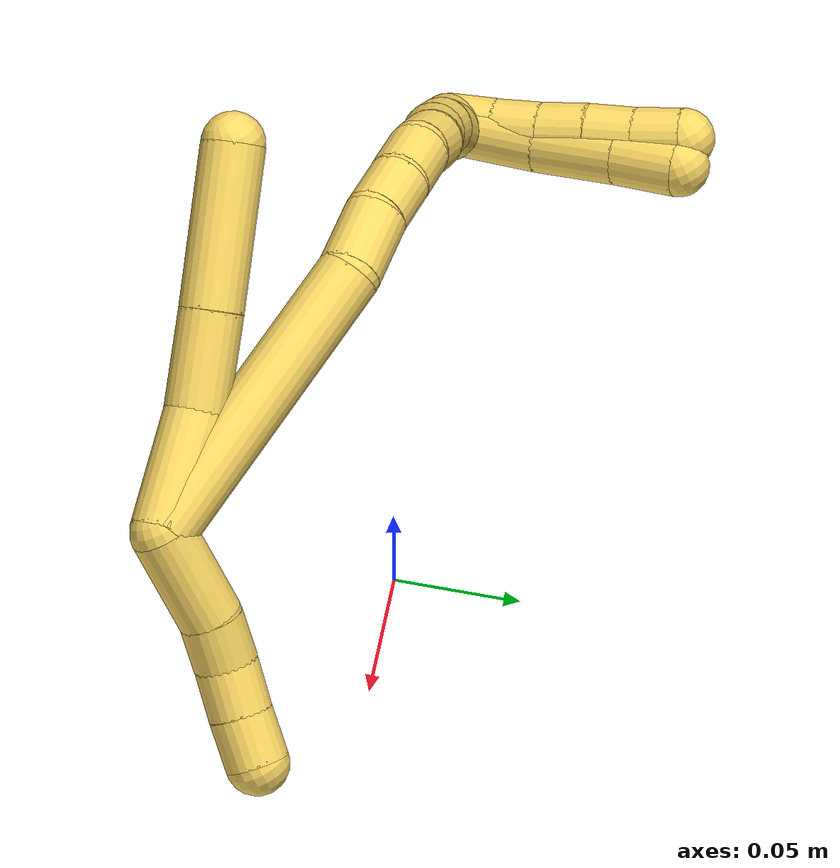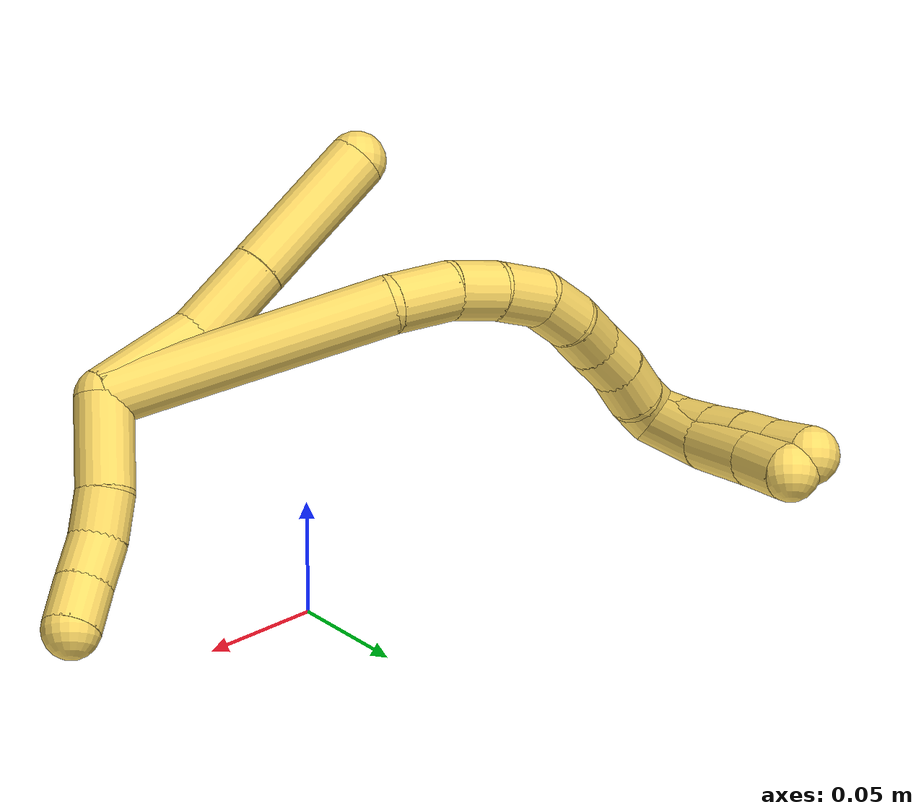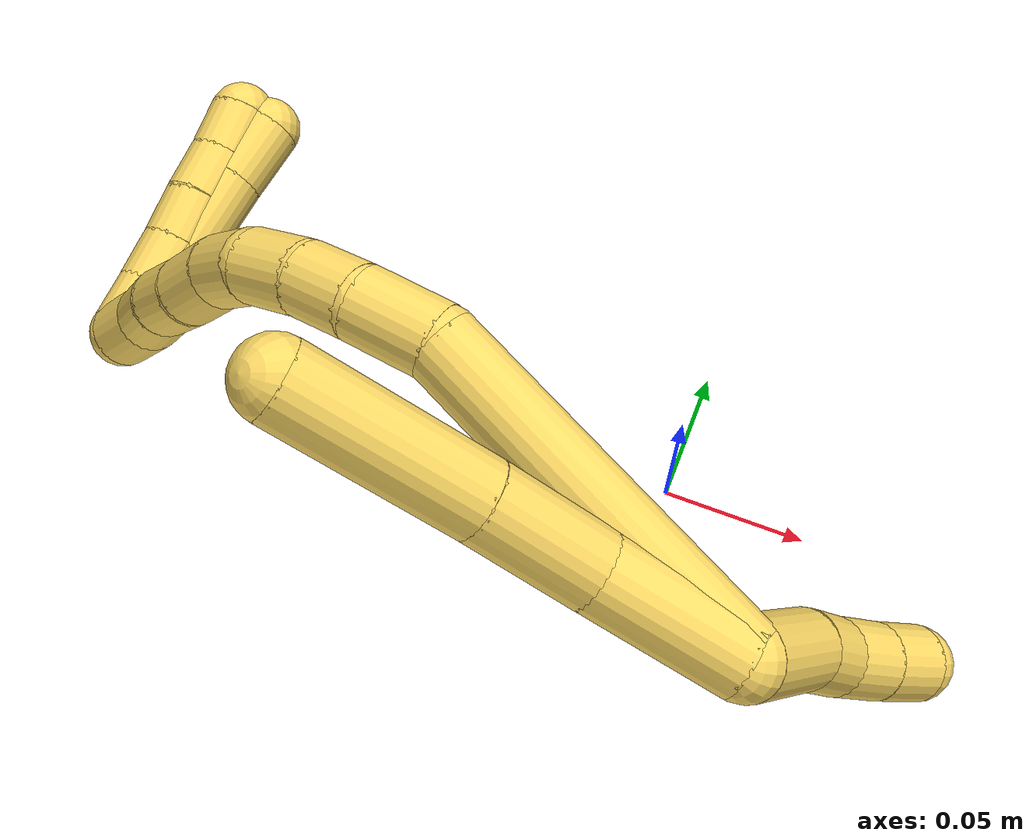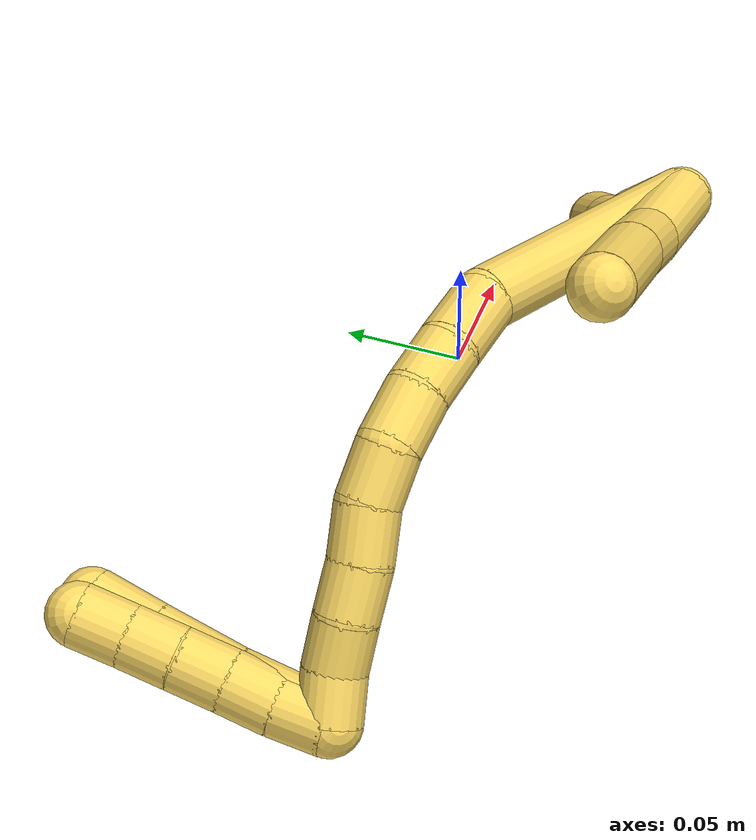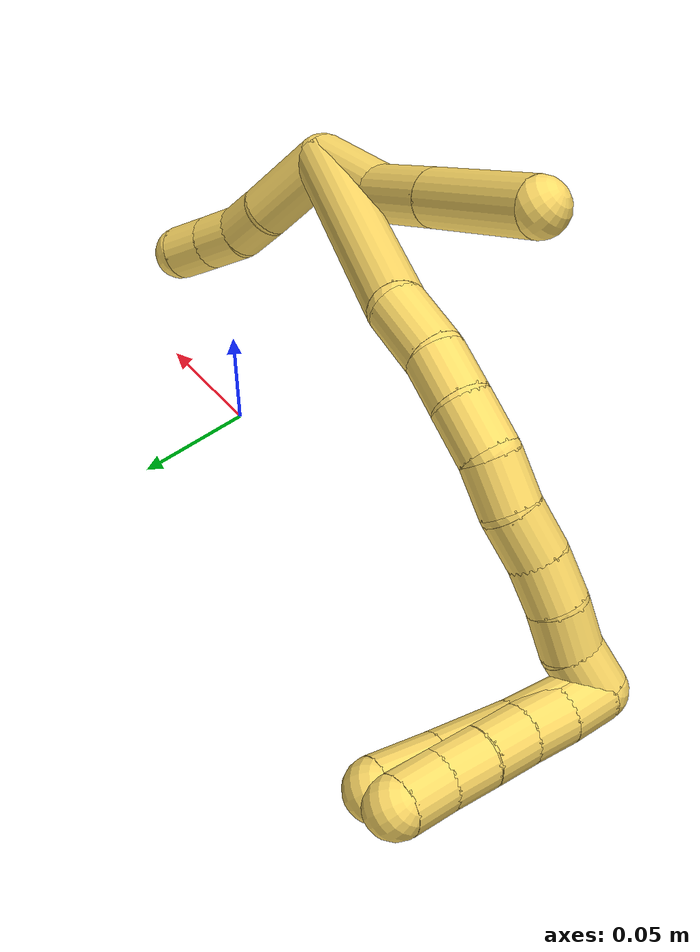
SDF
<sdf version="1.7">
 <world name="default">
  <model name="5">
   <static>0</static>
   <link name="5">
    <collision name="collision-cylinder-e_1_2_8">
     <pose>-0.019123 0.000857 0.014063 -0.060892 -0.935826 0.030778</pose>
     <geometry><cylinder><radius>0.0125</radius><length>0.047505</length></cylinder></geometry>
     <surface>
      <friction><ode><mu>1.16</mu><mu2>1.16</mu2><slip1>0</slip1><slip2>0</slip2></ode></friction>
      <contact><ode><kp>1e+06</kp><kd>1</kd><max_vel>0</max_vel><min_depth>0.001</min_depth></ode></contact>
     </surface>
    </collision>
    <visual name="visual-cylinder-e_1_2_8">
     <pose>-0.019123 0.000857 0.014063 -0.060892 -0.935826 0.030778</pose>
     <geometry><cylinder><radius>0.0125</radius><length>0.047505</length></cylinder></geometry>
     <material><ambient>1 0.858824 0.4 1</ambient></material>
    </visual>
    <collision name="collision-cylinder-e_2_8_9">
     <pose>-0.050573 0.004284 0.042958 -0.17149 -0.686198 0.061392</pose>
     <geometry><cylinder><radius>0.0125</radius><length>0.038914</length></cylinder></geometry>
     <surface>
      <friction><ode><mu>1.16</mu><mu2>1.16</mu2><slip1>0</slip1><slip2>0</slip2></ode></friction>
      <contact><ode><kp>1e+06</kp><kd>1</kd><max_vel>0</max_vel><min_depth>0.001</min_depth></ode></contact>
     </surface>
    </collision>
    <visual name="visual-cylinder-e_2_8_9">
     <pose>-0.050573 0.004284 0.042958 -0.17149 -0.686198 0.061392</pose>
     <geometry><cylinder><radius>0.0125</radius><length>0.038914</length></cylinder></geometry>
     <material><ambient>1 0.858824 0.4 1</ambient></material>
    </visual>
    <collision name="collision-cylinder-e_3_9_6">
     <pose>-0.083076 0.010231 0.082125 -0.137973 -0.687502 0.049458</pose>
     <geometry><cylinder><radius>0.0125</radius><length>0.063581</length></cylinder></geometry>
     <surface>
      <friction><ode><mu>1.16</mu><mu2>1.16</mu2><slip1>0</slip1><slip2>0</slip2></ode></friction>
      <contact><ode><kp>1e+06</kp><kd>1</kd><max_vel>0</max_vel><min_depth>0.001</min_depth></ode></contact>
     </surface>
    </collision>
    <visual name="visual-cylinder-e_3_9_6">
     <pose>-0.083076 0.010231 0.082125 -0.137973 -0.687502 0.049458</pose>
     <geometry><cylinder><radius>0.0125</radius><length>0.063581</length></cylinder></geometry>
     <material><ambient>1 0.858824 0.4 1</ambient></material>
    </visual>
    <collision name="collision-cylinder-e_1_2_10">
     <pose>-0.000493 0.000101 -0.019827 -3.13651 -0.024846 2.73824</pose>
     <geometry><cylinder><radius>0.0125</radius><length>0.039668</length></cylinder></geometry>
     <surface>
      <friction><ode><mu>1.16</mu><mu2>1.16</mu2><slip1>0</slip1><slip2>0</slip2></ode></friction>
      <contact><ode><kp>1e+06</kp><kd>1</kd><max_vel>0</max_vel><min_depth>0.001</min_depth></ode></contact>
     </surface>
    </collision>
    <visual name="visual-cylinder-e_1_2_10">
     <pose>-0.000493 0.000101 -0.019827 -3.13651 -0.024846 2.73824</pose>
     <geometry><cylinder><radius>0.0125</radius><length>0.039668</length></cylinder></geometry>
     <material><ambient>1 0.858824 0.4 1</ambient></material>
    </visual>
    <collision name="collision-cylinder-e_2_10_11">
     <pose>0.000184 -0.000851 -0.049633 3.03651 0.116076 1.67034</pose>
     <geometry><cylinder><radius>0.0125</radius><length>0.020204</length></cylinder></geometry>
     <surface>
      <friction><ode><mu>1.16</mu><mu2>1.16</mu2><slip1>0</slip1><slip2>0</slip2></ode></friction>
      <contact><ode><kp>1e+06</kp><kd>1</kd><max_vel>0</max_vel><min_depth>0.001</min_depth></ode></contact>
     </surface>
    </collision>
    <visual name="visual-cylinder-e_2_10_11">
     <pose>0.000184 -0.000851 -0.049633 3.03651 0.116076 1.67034</pose>
     <geometry><cylinder><radius>0.0125</radius><length>0.020204</length></cylinder></geometry>
     <material><ambient>1 0.858824 0.4 1</ambient></material>
    </visual>
    <collision name="collision-cylinder-e_3_11_12">
     <pose>0.004365 -0.00114 -0.069167 -3.06184 0.304291 -2.63247</pose>
     <geometry><cylinder><radius>0.0125</radius><length>0.020094</length></cylinder></geometry>
     <surface>
      <friction><ode><mu>1.16</mu><mu2>1.16</mu2><slip1>0</slip1><slip2>0</slip2></ode></friction>
      <contact><ode><kp>1e+06</kp><kd>1</kd><max_vel>0</max_vel><min_depth>0.001</min_depth></ode></contact>
     </surface>
    </collision>
    <visual name="visual-cylinder-e_3_11_12">
     <pose>0.004365 -0.00114 -0.069167 -3.06184 0.304291 -2.63247</pose>
     <geometry><cylinder><radius>0.0125</radius><length>0.020094</length></cylinder></geometry>
     <material><ambient>1 0.858824 0.4 1</ambient></material>
    </visual>
    <collision name="collision-cylinder-e_4_12_5">
     <pose>0.010174 0.000818 -0.088266 -3.0171 0.283176 -2.31719</pose>
     <geometry><cylinder><radius>0.0125</radius><length>0.020035</length></cylinder></geometry>
     <surface>
      <friction><ode><mu>1.16</mu><mu2>1.16</mu2><slip1>0</slip1><slip2>0</slip2></ode></friction>
      <contact><ode><kp>1e+06</kp><kd>1</kd><max_vel>0</max_vel><min_depth>0.001</min_depth></ode></contact>
     </surface>
    </collision>
    <visual name="visual-cylinder-e_4_12_5">
     <pose>0.010174 0.000818 -0.088266 -3.0171 0.283176 -2.31719</pose>
     <geometry><cylinder><radius>0.0125</radius><length>0.020035</length></cylinder></geometry>
     <material><ambient>1 0.858824 0.4 1</ambient></material>
    </visual>
    <collision name="collision-cylinder-e_1_2_13">
     <pose>-0.056459 0.014271 0.020708 -0.603416 -1.15174 0.398756</pose>
     <geometry><cylinder><radius>0.0125</radius><length>0.123615</length></cylinder></geometry>
     <surface>
      <friction><ode><mu>1.16</mu><mu2>1.16</mu2><slip1>0</slip1><slip2>0</slip2></ode></friction>
      <contact><ode><kp>1e+06</kp><kd>1</kd><max_vel>0</max_vel><min_depth>0.001</min_depth></ode></contact>
     </surface>
    </collision>
    <visual name="visual-cylinder-e_1_2_13">
     <pose>-0.056459 0.014271 0.020708 -0.603416 -1.15174 0.398756</pose>
     <geometry><cylinder><radius>0.0125</radius><length>0.123615</length></cylinder></geometry>
     <material><ambient>1 0.858824 0.4 1</ambient></material>
    </visual>
    <collision name="collision-cylinder-e_2_13_14">
     <pose>-0.126259 0.027021 0.046041 0.317811 -1.2208 -0.223272</pose>
     <geometry><cylinder><radius>0.0125</radius><length>0.028401</length></cylinder></geometry>
     <surface>
      <friction><ode><mu>1.16</mu><mu2>1.16</mu2><slip1>0</slip1><slip2>0</slip2></ode></friction>
      <contact><ode><kp>1e+06</kp><kd>1</kd><max_vel>0</max_vel><min_depth>0.001</min_depth></ode></contact>
     </surface>
    </collision>
    <visual name="visual-cylinder-e_2_13_14">
     <pose>-0.126259 0.027021 0.046041 0.317811 -1.2208 -0.223272</pose>
     <geometry><cylinder><radius>0.0125</radius><length>0.028401</length></cylinder></geometry>
     <material><ambient>1 0.858824 0.4 1</ambient></material>
    </visual>
    <collision name="collision-cylinder-e_3_14_15">
     <pose>-0.150252 0.0235 0.052132 0.938512 -1.34219 -0.765493</pose>
     <geometry><cylinder><radius>0.0125</radius><length>0.021876</length></cylinder></geometry>
     <surface>
      <friction><ode><mu>1.16</mu><mu2>1.16</mu2><slip1>0</slip1><slip2>0</slip2></ode></friction>
      <contact><ode><kp>1e+06</kp><kd>1</kd><max_vel>0</max_vel><min_depth>0.001</min_depth></ode></contact>
     </surface>
    </collision>
    <visual name="visual-cylinder-e_3_14_15">
     <pose>-0.150252 0.0235 0.052132 0.938512 -1.34219 -0.765493</pose>
     <geometry><cylinder><radius>0.0125</radius><length>0.021876</length></cylinder></geometry>
     <material><ambient>1 0.858824 0.4 1</ambient></material>
    </visual>
    <collision name="collision-cylinder-e_4_15_16">
     <pose>-0.171634 0.017822 0.054063 1.4446 -1.23813 -1.12125</pose>
     <geometry><cylinder><radius>0.0125</radius><length>0.022703</length></cylinder></geometry>
     <surface>
      <friction><ode><mu>1.16</mu><mu2>1.16</mu2><slip1>0</slip1><slip2>0</slip2></ode></friction>
      <contact><ode><kp>1e+06</kp><kd>1</kd><max_vel>0</max_vel><min_depth>0.001</min_depth></ode></contact>
     </surface>
    </collision>
    <visual name="visual-cylinder-e_4_15_16">
     <pose>-0.171634 0.017822 0.054063 1.4446 -1.23813 -1.12125</pose>
     <geometry><cylinder><radius>0.0125</radius><length>0.022703</length></cylinder></geometry>
     <material><ambient>1 0.858824 0.4 1</ambient></material>
    </visual>
    <collision name="collision-cylinder-e_5_16_17">
     <pose>-0.191277 0.008772 0.05202 2.00784 -0.98374 -1.39929</pose>
     <geometry><cylinder><radius>0.0125</radius><length>0.021413</length></cylinder></geometry>
     <surface>
      <friction><ode><mu>1.16</mu><mu2>1.16</mu2><slip1>0</slip1><slip2>0</slip2></ode></friction>
      <contact><ode><kp>1e+06</kp><kd>1</kd><max_vel>0</max_vel><min_depth>0.001</min_depth></ode></contact>
     </surface>
    </collision>
    <visual name="visual-cylinder-e_5_16_17">
     <pose>-0.191277 0.008772 0.05202 2.00784 -0.98374 -1.39929</pose>
     <geometry><cylinder><radius>0.0125</radius><length>0.021413</length></cylinder></geometry>
     <material><ambient>1 0.858824 0.4 1</ambient></material>
    </visual>
    <collision name="collision-cylinder-e_6_17_18">
     <pose>-0.207657 -0.00396 0.047217 1.87273 -0.769442 -1.00598</pose>
     <geometry><cylinder><radius>0.0125</radius><length>0.021462</length></cylinder></geometry>
     <surface>
      <friction><ode><mu>1.16</mu><mu2>1.16</mu2><slip1>0</slip1><slip2>0</slip2></ode></friction>
      <contact><ode><kp>1e+06</kp><kd>1</kd><max_vel>0</max_vel><min_depth>0.001</min_depth></ode></contact>
     </surface>
    </collision>
    <visual name="visual-cylinder-e_6_17_18">
     <pose>-0.207657 -0.00396 0.047217 1.87273 -0.769442 -1.00598</pose>
     <geometry><cylinder><radius>0.0125</radius><length>0.021462</length></cylinder></geometry>
     <material><ambient>1 0.858824 0.4 1</ambient></material>
    </visual>
    <collision name="collision-cylinder-e_7_18_19">
     <pose>-0.222779 -0.017408 0.042067 2.00974 -0.849986 -1.23807</pose>
     <geometry><cylinder><radius>0.0125</radius><length>0.02038</length></cylinder></geometry>
     <surface>
      <friction><ode><mu>1.16</mu><mu2>1.16</mu2><slip1>0</slip1><slip2>0</slip2></ode></friction>
      <contact><ode><kp>1e+06</kp><kd>1</kd><max_vel>0</max_vel><min_depth>0.001</min_depth></ode></contact>
     </surface>
    </collision>
    <visual name="visual-cylinder-e_7_18_19">
     <pose>-0.222779 -0.017408 0.042067 2.00974 -0.849986 -1.23807</pose>
     <geometry><cylinder><radius>0.0125</radius><length>0.02038</length></cylinder></geometry>
     <material><ambient>1 0.858824 0.4 1</ambient></material>
    </visual>
    <collision name="collision-cylinder-e_8_19_20">
     <pose>-0.237107 -0.029748 0.035099 2.15219 -0.728275 -1.23019</pose>
     <geometry><cylinder><radius>0.0125</radius><length>0.020051</length></cylinder></geometry>
     <surface>
      <friction><ode><mu>1.16</mu><mu2>1.16</mu2><slip1>0</slip1><slip2>0</slip2></ode></friction>
      <contact><ode><kp>1e+06</kp><kd>1</kd><max_vel>0</max_vel><min_depth>0.001</min_depth></ode></contact>
     </surface>
    </collision>
    <visual name="visual-cylinder-e_8_19_20">
     <pose>-0.237107 -0.029748 0.035099 2.15219 -0.728275 -1.23019</pose>
     <geometry><cylinder><radius>0.0125</radius><length>0.020051</length></cylinder></geometry>
     <material><ambient>1 0.858824 0.4 1</ambient></material>
    </visual>
    <collision name="collision-cylinder-e_9_20_1">
     <pose>-0.250659 -0.04308 0.029104 1.83122 -0.754006 -0.951568</pose>
     <geometry><cylinder><radius>0.0125</radius><length>0.020099</length></cylinder></geometry>
     <surface>
      <friction><ode><mu>1.16</mu><mu2>1.16</mu2><slip1>0</slip1><slip2>0</slip2></ode></friction>
      <contact><ode><kp>1e+06</kp><kd>1</kd><max_vel>0</max_vel><min_depth>0.001</min_depth></ode></contact>
     </surface>
    </collision>
    <visual name="visual-cylinder-e_9_20_1">
     <pose>-0.250659 -0.04308 0.029104 1.83122 -0.754006 -0.951568</pose>
     <geometry><cylinder><radius>0.0125</radius><length>0.020099</length></cylinder></geometry>
     <material><ambient>1 0.858824 0.4 1</ambient></material>
    </visual>
    <collision name="collision-cylinder-e_1_1_21">
     <pose>-0.263505 -0.034134 0.017744 -2.1047 -0.31016 0.534932</pose>
     <geometry><cylinder><radius>0.0125</radius><length>0.039097</length></cylinder></geometry>
     <surface>
      <friction><ode><mu>1.16</mu><mu2>1.16</mu2><slip1>0</slip1><slip2>0</slip2></ode></friction>
      <contact><ode><kp>1e+06</kp><kd>1</kd><max_vel>0</max_vel><min_depth>0.001</min_depth></ode></contact>
     </surface>
    </collision>
    <visual name="visual-cylinder-e_1_1_21">
     <pose>-0.263505 -0.034134 0.017744 -2.1047 -0.31016 0.534932</pose>
     <geometry><cylinder><radius>0.0125</radius><length>0.039097</length></cylinder></geometry>
     <material><ambient>1 0.858824 0.4 1</ambient></material>
    </visual>
    <collision name="collision-cylinder-e_2_21_22">
     <pose>-0.274089 -0.002982 0.001238 -2.00601 -0.270025 0.419655</pose>
     <geometry><cylinder><radius>0.0125</radius><length>0.034618</length></cylinder></geometry>
     <surface>
      <friction><ode><mu>1.16</mu><mu2>1.16</mu2><slip1>0</slip1><slip2>0</slip2></ode></friction>
      <contact><ode><kp>1e+06</kp><kd>1</kd><max_vel>0</max_vel><min_depth>0.001</min_depth></ode></contact>
     </surface>
    </collision>
    <visual name="visual-cylinder-e_2_21_22">
     <pose>-0.274089 -0.002982 0.001238 -2.00601 -0.270025 0.419655</pose>
     <geometry><cylinder><radius>0.0125</radius><length>0.034618</length></cylinder></geometry>
     <material><ambient>1 0.858824 0.4 1</ambient></material>
    </visual>
    <collision name="collision-cylinder-e_3_22_4">
     <pose>-0.281899 0.023571 -0.011449 -2.03024 -0.245394 0.392091</pose>
     <geometry><cylinder><radius>0.0125</radius><length>0.026285</length></cylinder></geometry>
     <surface>
      <friction><ode><mu>1.16</mu><mu2>1.16</mu2><slip1>0</slip1><slip2>0</slip2></ode></friction>
      <contact><ode><kp>1e+06</kp><kd>1</kd><max_vel>0</max_vel><min_depth>0.001</min_depth></ode></contact>
     </surface>
    </collision>
    <visual name="visual-cylinder-e_3_22_4">
     <pose>-0.281899 0.023571 -0.011449 -2.03024 -0.245394 0.392091</pose>
     <geometry><cylinder><radius>0.0125</radius><length>0.026285</length></cylinder></geometry>
     <material><ambient>1 0.858824 0.4 1</ambient></material>
    </visual>
    <collision name="collision-cylinder-e_1_1_23">
     <pose>-0.261396 -0.042011 0.02289 -2.05908 -0.395986 0.644223</pose>
     <geometry><cylinder><radius>0.0125</radius><length>0.02</length></cylinder></geometry>
     <surface>
      <friction><ode><mu>1.16</mu><mu2>1.16</mu2><slip1>0</slip1><slip2>0</slip2></ode></friction>
      <contact><ode><kp>1e+06</kp><kd>1</kd><max_vel>0</max_vel><min_depth>0.001</min_depth></ode></contact>
     </surface>
    </collision>
    <visual name="visual-cylinder-e_1_1_23">
     <pose>-0.261396 -0.042011 0.02289 -2.05908 -0.395986 0.644223</pose>
     <geometry><cylinder><radius>0.0125</radius><length>0.02</length></cylinder></geometry>
     <material><ambient>1 0.858824 0.4 1</ambient></material>
    </visual>
    <collision name="collision-cylinder-e_2_23_24">
     <pose>-0.268614 -0.025189 0.014891 -1.97115 -0.342804 0.511026</pose>
     <geometry><cylinder><radius>0.0125</radius><length>0.02</length></cylinder></geometry>
     <surface>
      <friction><ode><mu>1.16</mu><mu2>1.16</mu2><slip1>0</slip1><slip2>0</slip2></ode></friction>
      <contact><ode><kp>1e+06</kp><kd>1</kd><max_vel>0</max_vel><min_depth>0.001</min_depth></ode></contact>
     </surface>
    </collision>
    <visual name="visual-cylinder-e_2_23_24">
     <pose>-0.268614 -0.025189 0.014891 -1.97115 -0.342804 0.511026</pose>
     <geometry><cylinder><radius>0.0125</radius><length>0.02</length></cylinder></geometry>
     <material><ambient>1 0.858824 0.4 1</ambient></material>
    </visual>
    <collision name="collision-cylinder-e_3_24_25">
     <pose>-0.275611 -0.007783 0.007975 -1.92658 -0.372052 0.528752</pose>
     <geometry><cylinder><radius>0.0125</radius><length>0.02</length></cylinder></geometry>
     <surface>
      <friction><ode><mu>1.16</mu><mu2>1.16</mu2><slip1>0</slip1><slip2>0</slip2></ode></friction>
      <contact><ode><kp>1e+06</kp><kd>1</kd><max_vel>0</max_vel><min_depth>0.001</min_depth></ode></contact>
     </surface>
    </collision>
    <visual name="visual-cylinder-e_3_24_25">
     <pose>-0.275611 -0.007783 0.007975 -1.92658 -0.372052 0.528752</pose>
     <geometry><cylinder><radius>0.0125</radius><length>0.02</length></cylinder></geometry>
     <material><ambient>1 0.858824 0.4 1</ambient></material>
    </visual>
    <collision name="collision-cylinder-e_4_25_26">
     <pose>-0.282738 0.009505 0.000908 -1.99091 -0.356666 0.54218</pose>
     <geometry><cylinder><radius>0.0125</radius><length>0.02</length></cylinder></geometry>
     <surface>
      <friction><ode><mu>1.16</mu><mu2>1.16</mu2><slip1>0</slip1><slip2>0</slip2></ode></friction>
      <contact><ode><kp>1e+06</kp><kd>1</kd><max_vel>0</max_vel><min_depth>0.001</min_depth></ode></contact>
     </surface>
    </collision>
    <visual name="visual-cylinder-e_4_25_26">
     <pose>-0.282738 0.009505 0.000908 -1.99091 -0.356666 0.54218</pose>
     <geometry><cylinder><radius>0.0125</radius><length>0.02</length></cylinder></geometry>
     <material><ambient>1 0.858824 0.4 1</ambient></material>
    </visual>
    <collision name="collision-cylinder-e_5_26_3">
     <pose>-0.290062 0.026716 -0.006137 -1.92735 -0.393367 0.5587</pose>
     <geometry><cylinder><radius>0.0125</radius><length>0.02</length></cylinder></geometry>
     <surface>
      <friction><ode><mu>1.16</mu><mu2>1.16</mu2><slip1>0</slip1><slip2>0</slip2></ode></friction>
      <contact><ode><kp>1e+06</kp><kd>1</kd><max_vel>0</max_vel><min_depth>0.001</min_depth></ode></contact>
     </surface>
    </collision>
    <visual name="visual-cylinder-e_5_26_3">
     <pose>-0.290062 0.026716 -0.006137 -1.92735 -0.393367 0.5587</pose>
     <geometry><cylinder><radius>0.0125</radius><length>0.02</length></cylinder></geometry>
     <material><ambient>1 0.858824 0.4 1</ambient></material>
    </visual>
    <collision name="collision-sphere-3">
     <pose>-0.293895 0.035371 -0.009361 0 -0 0</pose>
     <geometry><sphere><radius>0.0125</radius></sphere></geometry>
     <surface>
      <friction><ode><mu>1.16</mu><mu2>1.16</mu2><slip1>0</slip1><slip2>0</slip2></ode></friction>
      <contact><ode><kp>1e+06</kp><kd>1</kd><max_vel>0</max_vel><min_depth>0.001</min_depth></ode></contact>
     </surface>
    </collision>
    <visual name="visual-sphere-3">
     <pose>-0.293895 0.035371 -0.009361 0 -0 0</pose>
     <geometry><sphere><radius>0.0125</radius></sphere></geometry>
     <material><ambient>1 0.858824 0.4 1</ambient></material>
    </visual>
    <collision name="collision-sphere-26">
     <pose>-0.286229 0.018061 -0.002914 0 -0 0</pose>
     <geometry><sphere><radius>0.0125</radius></sphere></geometry>
     <surface>
      <friction><ode><mu>1.16</mu><mu2>1.16</mu2><slip1>0</slip1><slip2>0</slip2></ode></friction>
      <contact><ode><kp>1e+06</kp><kd>1</kd><max_vel>0</max_vel><min_depth>0.001</min_depth></ode></contact>
     </surface>
    </collision>
    <visual name="visual-sphere-26">
     <pose>-0.286229 0.018061 -0.002914 0 -0 0</pose>
     <geometry><sphere><radius>0.0125</radius></sphere></geometry>
     <material><ambient>1 0.858824 0.4 1</ambient></material>
    </visual>
    <collision name="collision-sphere-25">
     <pose>-0.279246 0.000949 0.00473 0 -0 0</pose>
     <geometry><sphere><radius>0.0125</radius></sphere></geometry>
     <surface>
      <friction><ode><mu>1.16</mu><mu2>1.16</mu2><slip1>0</slip1><slip2>0</slip2></ode></friction>
      <contact><ode><kp>1e+06</kp><kd>1</kd><max_vel>0</max_vel><min_depth>0.001</min_depth></ode></contact>
     </surface>
    </collision>
    <visual name="visual-sphere-25">
     <pose>-0.279246 0.000949 0.00473 0 -0 0</pose>
     <geometry><sphere><radius>0.0125</radius></sphere></geometry>
     <material><ambient>1 0.858824 0.4 1</ambient></material>
    </visual>
    <collision name="collision-sphere-24">
     <pose>-0.271976 -0.016516 0.01122 0 -0 0</pose>
     <geometry><sphere><radius>0.0125</radius></sphere></geometry>
     <surface>
      <friction><ode><mu>1.16</mu><mu2>1.16</mu2><slip1>0</slip1><slip2>0</slip2></ode></friction>
      <contact><ode><kp>1e+06</kp><kd>1</kd><max_vel>0</max_vel><min_depth>0.001</min_depth></ode></contact>
     </surface>
    </collision>
    <visual name="visual-sphere-24">
     <pose>-0.271976 -0.016516 0.01122 0 -0 0</pose>
     <geometry><sphere><radius>0.0125</radius></sphere></geometry>
     <material><ambient>1 0.858824 0.4 1</ambient></material>
    </visual>
    <collision name="collision-sphere-23">
     <pose>-0.265253 -0.033863 0.018562 0 -0 0</pose>
     <geometry><sphere><radius>0.0125</radius></sphere></geometry>
     <surface>
      <friction><ode><mu>1.16</mu><mu2>1.16</mu2><slip1>0</slip1><slip2>0</slip2></ode></friction>
      <contact><ode><kp>1e+06</kp><kd>1</kd><max_vel>0</max_vel><min_depth>0.001</min_depth></ode></contact>
     </surface>
    </collision>
    <visual name="visual-sphere-23">
     <pose>-0.265253 -0.033863 0.018562 0 -0 0</pose>
     <geometry><sphere><radius>0.0125</radius></sphere></geometry>
     <material><ambient>1 0.858824 0.4 1</ambient></material>
    </visual>
    <collision name="collision-sphere-4">
     <pose>-0.285092 0.034998 -0.017102 0 -0 0</pose>
     <geometry><sphere><radius>0.0125</radius></sphere></geometry>
     <surface>
      <friction><ode><mu>1.16</mu><mu2>1.16</mu2><slip1>0</slip1><slip2>0</slip2></ode></friction>
      <contact><ode><kp>1e+06</kp><kd>1</kd><max_vel>0</max_vel><min_depth>0.001</min_depth></ode></contact>
     </surface>
    </collision>
    <visual name="visual-sphere-4">
     <pose>-0.285092 0.034998 -0.017102 0 -0 0</pose>
     <geometry><sphere><radius>0.0125</radius></sphere></geometry>
     <material><ambient>1 0.858824 0.4 1</ambient></material>
    </visual>
    <collision name="collision-sphere-22">
     <pose>-0.278706 0.012144 -0.005795 0 -0 0</pose>
     <geometry><sphere><radius>0.0125</radius></sphere></geometry>
     <surface>
      <friction><ode><mu>1.16</mu><mu2>1.16</mu2><slip1>0</slip1><slip2>0</slip2></ode></friction>
      <contact><ode><kp>1e+06</kp><kd>1</kd><max_vel>0</max_vel><min_depth>0.001</min_depth></ode></contact>
     </surface>
    </collision>
    <visual name="visual-sphere-22">
     <pose>-0.278706 0.012144 -0.005795 0 -0 0</pose>
     <geometry><sphere><radius>0.0125</radius></sphere></geometry>
     <material><ambient>1 0.858824 0.4 1</ambient></material>
    </visual>
    <collision name="collision-sphere-21">
     <pose>-0.269472 -0.018109 0.008271 0 -0 0</pose>
     <geometry><sphere><radius>0.0125</radius></sphere></geometry>
     <surface>
      <friction><ode><mu>1.16</mu><mu2>1.16</mu2><slip1>0</slip1><slip2>0</slip2></ode></friction>
      <contact><ode><kp>1e+06</kp><kd>1</kd><max_vel>0</max_vel><min_depth>0.001</min_depth></ode></contact>
     </surface>
    </collision>
    <visual name="visual-sphere-21">
     <pose>-0.269472 -0.018109 0.008271 0 -0 0</pose>
     <geometry><sphere><radius>0.0125</radius></sphere></geometry>
     <material><ambient>1 0.858824 0.4 1</ambient></material>
    </visual>
    <collision name="collision-sphere-1">
     <pose>-0.257539 -0.050159 0.027218 0 -0 0</pose>
     <geometry><sphere><radius>0.0125</radius></sphere></geometry>
     <surface>
      <friction><ode><mu>1.16</mu><mu2>1.16</mu2><slip1>0</slip1><slip2>0</slip2></ode></friction>
      <contact><ode><kp>1e+06</kp><kd>1</kd><max_vel>0</max_vel><min_depth>0.001</min_depth></ode></contact>
     </surface>
    </collision>
    <visual name="visual-sphere-1">
     <pose>-0.257539 -0.050159 0.027218 0 -0 0</pose>
     <geometry><sphere><radius>0.0125</radius></sphere></geometry>
     <material><ambient>1 0.858824 0.4 1</ambient></material>
    </visual>
    <collision name="collision-sphere-11">
     <pose>0.001354 -0.001903 -0.059612 0 -0 0</pose>
     <geometry><sphere><radius>0.0125</radius></sphere></geometry>
     <surface>
      <friction><ode><mu>1.16</mu><mu2>1.16</mu2><slip1>0</slip1><slip2>0</slip2></ode></friction>
      <contact><ode><kp>1e+06</kp><kd>1</kd><max_vel>0</max_vel><min_depth>0.001</min_depth></ode></contact>
     </surface>
    </collision>
    <visual name="visual-sphere-11">
     <pose>0.001354 -0.001903 -0.059612 0 -0 0</pose>
     <geometry><sphere><radius>0.0125</radius></sphere></geometry>
     <material><ambient>1 0.858824 0.4 1</ambient></material>
    </visual>
    <collision name="collision-sphere-10">
     <pose>-0.000985 0.000201 -0.039655 0 -0 0</pose>
     <geometry><sphere><radius>0.0125</radius></sphere></geometry>
     <surface>
      <friction><ode><mu>1.16</mu><mu2>1.16</mu2><slip1>0</slip1><slip2>0</slip2></ode></friction>
      <contact><ode><kp>1e+06</kp><kd>1</kd><max_vel>0</max_vel><min_depth>0.001</min_depth></ode></contact>
     </surface>
    </collision>
    <visual name="visual-sphere-10">
     <pose>-0.000985 0.000201 -0.039655 0 -0 0</pose>
     <geometry><sphere><radius>0.0125</radius></sphere></geometry>
     <material><ambient>1 0.858824 0.4 1</ambient></material>
    </visual>
    <collision name="collision-sphere-6">
     <pose>-0.103251 0.013611 0.106461 0 -0 0</pose>
     <geometry><sphere><radius>0.0125</radius></sphere></geometry>
     <surface>
      <friction><ode><mu>1.16</mu><mu2>1.16</mu2><slip1>0</slip1><slip2>0</slip2></ode></friction>
      <contact><ode><kp>1e+06</kp><kd>1</kd><max_vel>0</max_vel><min_depth>0.001</min_depth></ode></contact>
     </surface>
    </collision>
    <visual name="visual-sphere-6">
     <pose>-0.103251 0.013611 0.106461 0 -0 0</pose>
     <geometry><sphere><radius>0.0125</radius></sphere></geometry>
     <material><ambient>1 0.858824 0.4 1</ambient></material>
    </visual>
    <collision name="collision-sphere-9">
     <pose>-0.062901 0.006852 0.05779 0 -0 0</pose>
     <geometry><sphere><radius>0.0125</radius></sphere></geometry>
     <surface>
      <friction><ode><mu>1.16</mu><mu2>1.16</mu2><slip1>0</slip1><slip2>0</slip2></ode></friction>
      <contact><ode><kp>1e+06</kp><kd>1</kd><max_vel>0</max_vel><min_depth>0.001</min_depth></ode></contact>
     </surface>
    </collision>
    <visual name="visual-sphere-9">
     <pose>-0.062901 0.006852 0.05779 0 -0 0</pose>
     <geometry><sphere><radius>0.0125</radius></sphere></geometry>
     <material><ambient>1 0.858824 0.4 1</ambient></material>
    </visual>
    <collision name="collision-sphere-2">
     <geometry><sphere><radius>0.0125</radius></sphere></geometry>
     <surface>
      <friction><ode><mu>1.16</mu><mu2>1.16</mu2><slip1>0</slip1><slip2>0</slip2></ode></friction>
      <contact><ode><kp>1e+06</kp><kd>1</kd><max_vel>0</max_vel><min_depth>0.001</min_depth></ode></contact>
     </surface>
    </collision>
    <visual name="visual-sphere-2">
     <geometry><sphere><radius>0.0125</radius></sphere></geometry>
     <material><ambient>1 0.858824 0.4 1</ambient></material>
    </visual>
    <collision name="collision-sphere-19">
     <pose>-0.230434 -0.023496 0.039209 0 -0 0</pose>
     <geometry><sphere><radius>0.0125</radius></sphere></geometry>
     <surface>
      <friction><ode><mu>1.16</mu><mu2>1.16</mu2><slip1>0</slip1><slip2>0</slip2></ode></friction>
      <contact><ode><kp>1e+06</kp><kd>1</kd><max_vel>0</max_vel><min_depth>0.001</min_depth></ode></contact>
     </surface>
    </collision>
    <visual name="visual-sphere-19">
     <pose>-0.230434 -0.023496 0.039209 0 -0 0</pose>
     <geometry><sphere><radius>0.0125</radius></sphere></geometry>
     <material><ambient>1 0.858824 0.4 1</ambient></material>
    </visual>
    <collision name="collision-sphere-8">
     <pose>-0.038246 0.001715 0.028125 0 -0 0</pose>
     <geometry><sphere><radius>0.0125</radius></sphere></geometry>
     <surface>
      <friction><ode><mu>1.16</mu><mu2>1.16</mu2><slip1>0</slip1><slip2>0</slip2></ode></friction>
      <contact><ode><kp>1e+06</kp><kd>1</kd><max_vel>0</max_vel><min_depth>0.001</min_depth></ode></contact>
     </surface>
    </collision>
    <visual name="visual-sphere-8">
     <pose>-0.038246 0.001715 0.028125 0 -0 0</pose>
     <geometry><sphere><radius>0.0125</radius></sphere></geometry>
     <material><ambient>1 0.858824 0.4 1</ambient></material>
    </visual>
    <collision name="collision-sphere-12">
     <pose>0.007375 -0.000376 -0.078722 0 -0 0</pose>
     <geometry><sphere><radius>0.0125</radius></sphere></geometry>
     <surface>
      <friction><ode><mu>1.16</mu><mu2>1.16</mu2><slip1>0</slip1><slip2>0</slip2></ode></friction>
      <contact><ode><kp>1e+06</kp><kd>1</kd><max_vel>0</max_vel><min_depth>0.001</min_depth></ode></contact>
     </surface>
    </collision>
    <visual name="visual-sphere-12">
     <pose>0.007375 -0.000376 -0.078722 0 -0 0</pose>
     <geometry><sphere><radius>0.0125</radius></sphere></geometry>
     <material><ambient>1 0.858824 0.4 1</ambient></material>
    </visual>
    <collision name="collision-sphere-5">
     <pose>0.012973 0.002013 -0.09781 0 -0 0</pose>
     <geometry><sphere><radius>0.0125</radius></sphere></geometry>
     <surface>
      <friction><ode><mu>1.16</mu><mu2>1.16</mu2><slip1>0</slip1><slip2>0</slip2></ode></friction>
      <contact><ode><kp>1e+06</kp><kd>1</kd><max_vel>0</max_vel><min_depth>0.001</min_depth></ode></contact>
     </surface>
    </collision>
    <visual name="visual-sphere-5">
     <pose>0.012973 0.002013 -0.09781 0 -0 0</pose>
     <geometry><sphere><radius>0.0125</radius></sphere></geometry>
     <material><ambient>1 0.858824 0.4 1</ambient></material>
    </visual>
    <collision name="collision-sphere-13">
     <pose>-0.112919 0.028542 0.041416 0 -0 0</pose>
     <geometry><sphere><radius>0.0125</radius></sphere></geometry>
     <surface>
      <friction><ode><mu>1.16</mu><mu2>1.16</mu2><slip1>0</slip1><slip2>0</slip2></ode></friction>
      <contact><ode><kp>1e+06</kp><kd>1</kd><max_vel>0</max_vel><min_depth>0.001</min_depth></ode></contact>
     </surface>
    </collision>
    <visual name="visual-sphere-13">
     <pose>-0.112919 0.028542 0.041416 0 -0 0</pose>
     <geometry><sphere><radius>0.0125</radius></sphere></geometry>
     <material><ambient>1 0.858824 0.4 1</ambient></material>
    </visual>
    <collision name="collision-sphere-14">
     <pose>-0.139598 0.025499 0.050667 0 -0 0</pose>
     <geometry><sphere><radius>0.0125</radius></sphere></geometry>
     <surface>
      <friction><ode><mu>1.16</mu><mu2>1.16</mu2><slip1>0</slip1><slip2>0</slip2></ode></friction>
      <contact><ode><kp>1e+06</kp><kd>1</kd><max_vel>0</max_vel><min_depth>0.001</min_depth></ode></contact>
     </surface>
    </collision>
    <visual name="visual-sphere-14">
     <pose>-0.139598 0.025499 0.050667 0 -0 0</pose>
     <geometry><sphere><radius>0.0125</radius></sphere></geometry>
     <material><ambient>1 0.858824 0.4 1</ambient></material>
    </visual>
    <collision name="collision-sphere-15">
     <pose>-0.160905 0.0215 0.053597 0 -0 0</pose>
     <geometry><sphere><radius>0.0125</radius></sphere></geometry>
     <surface>
      <friction><ode><mu>1.16</mu><mu2>1.16</mu2><slip1>0</slip1><slip2>0</slip2></ode></friction>
      <contact><ode><kp>1e+06</kp><kd>1</kd><max_vel>0</max_vel><min_depth>0.001</min_depth></ode></contact>
     </surface>
    </collision>
    <visual name="visual-sphere-15">
     <pose>-0.160905 0.0215 0.053597 0 -0 0</pose>
     <geometry><sphere><radius>0.0125</radius></sphere></geometry>
     <material><ambient>1 0.858824 0.4 1</ambient></material>
    </visual>
    <collision name="collision-sphere-16">
     <pose>-0.182363 0.014145 0.05453 0 -0 0</pose>
     <geometry><sphere><radius>0.0125</radius></sphere></geometry>
     <surface>
      <friction><ode><mu>1.16</mu><mu2>1.16</mu2><slip1>0</slip1><slip2>0</slip2></ode></friction>
      <contact><ode><kp>1e+06</kp><kd>1</kd><max_vel>0</max_vel><min_depth>0.001</min_depth></ode></contact>
     </surface>
    </collision>
    <visual name="visual-sphere-16">
     <pose>-0.182363 0.014145 0.05453 0 -0 0</pose>
     <geometry><sphere><radius>0.0125</radius></sphere></geometry>
     <material><ambient>1 0.858824 0.4 1</ambient></material>
    </visual>
    <collision name="collision-sphere-17">
     <pose>-0.200191 0.003399 0.049509 0 -0 0</pose>
     <geometry><sphere><radius>0.0125</radius></sphere></geometry>
     <surface>
      <friction><ode><mu>1.16</mu><mu2>1.16</mu2><slip1>0</slip1><slip2>0</slip2></ode></friction>
      <contact><ode><kp>1e+06</kp><kd>1</kd><max_vel>0</max_vel><min_depth>0.001</min_depth></ode></contact>
     </surface>
    </collision>
    <visual name="visual-sphere-17">
     <pose>-0.200191 0.003399 0.049509 0 -0 0</pose>
     <geometry><sphere><radius>0.0125</radius></sphere></geometry>
     <material><ambient>1 0.858824 0.4 1</ambient></material>
    </visual>
    <collision name="collision-sphere-18">
     <pose>-0.215123 -0.01132 0.044925 0 -0 0</pose>
     <geometry><sphere><radius>0.0125</radius></sphere></geometry>
     <surface>
      <friction><ode><mu>1.16</mu><mu2>1.16</mu2><slip1>0</slip1><slip2>0</slip2></ode></friction>
      <contact><ode><kp>1e+06</kp><kd>1</kd><max_vel>0</max_vel><min_depth>0.001</min_depth></ode></contact>
     </surface>
    </collision>
    <visual name="visual-sphere-18">
     <pose>-0.215123 -0.01132 0.044925 0 -0 0</pose>
     <geometry><sphere><radius>0.0125</radius></sphere></geometry>
     <material><ambient>1 0.858824 0.4 1</ambient></material>
    </visual>
    <collision name="collision-sphere-20">
     <pose>-0.24378 -0.036001 0.03099 0 -0 0</pose>
     <geometry><sphere><radius>0.0125</radius></sphere></geometry>
     <surface>
      <friction><ode><mu>1.16</mu><mu2>1.16</mu2><slip1>0</slip1><slip2>0</slip2></ode></friction>
      <contact><ode><kp>1e+06</kp><kd>1</kd><max_vel>0</max_vel><min_depth>0.001</min_depth></ode></contact>
     </surface>
    </collision>
    <visual name="visual-sphere-20">
     <pose>-0.24378 -0.036001 0.03099 0 -0 0</pose>
     <geometry><sphere><radius>0.0125</radius></sphere></geometry>
     <material><ambient>1 0.858824 0.4 1</ambient></material>
    </visual>
    <inertial>
     <pose>-0.137714 0.001308 0.019158 0 -0 0</pose>
     <mass>0.75</mass>
     <inertia>
      <ixx>0.000104</ixx>
      <ixy>0</ixy>
      <ixz>0</ixz>
      <iyy>0.000254</iyy>
      <iyz>0</iyz>
      <izz>0.000137</izz>
     </inertia>
    </inertial>
   </link>
   <pose>0.039919 -0.080217 0.079822 0.715071 -0.21655 -0.461795</pose>
  </model>
 </world>
</sdf>
